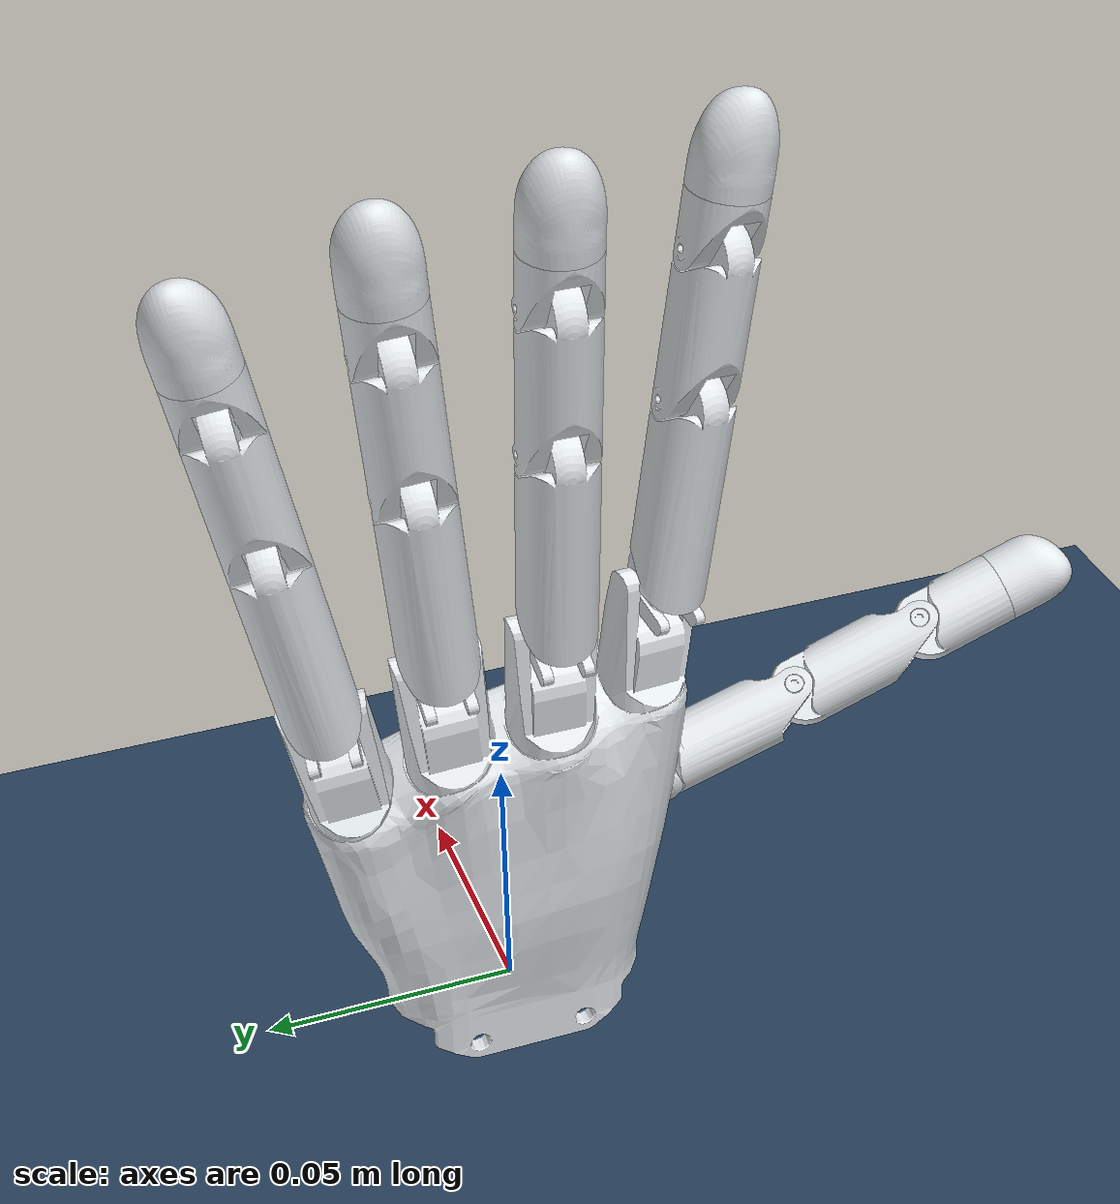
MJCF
<mujoco model="wujihand-left-v1.0.0">

  <!-- ======= COMPILER SETTINGS ======= -->
  <compiler angle="radian"
           meshdir="meshes/left/"
           boundmass="0.001"
           boundinertia="1e-6"
           balanceinertia="true"
           autolimits="true"/>

  <!-- ======= SIMULATION OPTIONS ======= -->
  <option jacobian="sparse"
          integrator="RK4"
          timestep="0.002"
          solver="Newton"
          iterations="50"
          tolerance="1e-10"
          impratio="10"/>

  <!-- ======= VISUAL SETTINGS ======= -->
  <visual>
    <global fovy="45" linewidth="1" glow="0.02" offwidth="640" offheight="480"/>
    <quality shadowsize="2048" offsamples="4"/>
    <map force="0.1" znear="0.01"/>
    <headlight ambient="0.4 0.4 0.4" diffuse="0.5 0.5 0.5" specular="0.1 0.1 0.1"/>
  </visual>

  <!-- ======= MATERIALS & TEXTURES ======= -->
  <asset>
    <!-- Sky background -->
    <texture type="skybox" builtin="gradient"
             rgb1="0.3 0.5 0.7" rgb2="0 0 0"
             width="512" height="3072"/>
    <!-- Ground plane texture -->
    <texture name="texplane" type="2d" builtin="checker"
             rgb1="0.2 0.3 0.4" rgb2="0.1 0.2 0.3"
             markrgb="0.8 0.8 0.8" width="300" height="300"/>
    <material name="groundplane" texture="texplane"
              texuniform="true" texrepeat="5 5" reflectance="0.2"/>
    <!-- Palm Components -->
    <mesh name="palm_mask"            content_type="model/stl" file="palm_mask.STL"/>
    <mesh name="palm_link"            content_type="model/stl" file="palm_link.STL"/>

    <!-- Finger 1 (Index) Components -->
    <mesh name="finger1_link1"        content_type="model/stl" file="finger1_link1.STL"/>
    <mesh name="finger1_link2"        content_type="model/stl" file="finger1_link2.STL"/>
    <mesh name="finger1_link3"        content_type="model/stl" file="finger1_link3.STL"/>
    <mesh name="finger1_link4"        content_type="model/stl" file="finger1_link4.STL"/>
    <mesh name="finger1_tip_link"     content_type="model/stl" file="finger1_tip_link.STL"/>

    <!-- Finger 2 Components -->
    <mesh name="finger2_link1"        content_type="model/stl" file="finger2_link1.STL"/>
    <mesh name="finger2_link2"        content_type="model/stl" file="finger2_link2.STL"/>
    <mesh name="finger2_link3"        content_type="model/stl" file="finger2_link3.STL"/>
    <mesh name="finger2_link4"        content_type="model/stl" file="finger2_link4.STL"/>
    <mesh name="finger2_tip_link"     content_type="model/stl" file="finger2_tip_link.STL"/>

    <!-- Finger 3 (Middle) Components -->
    <mesh name="finger3_link1"        content_type="model/stl" file="finger3_link1.STL"/>
    <mesh name="finger3_link2"        content_type="model/stl" file="finger3_link2.STL"/>
    <mesh name="finger3_link3"        content_type="model/stl" file="finger3_link3.STL"/>
    <mesh name="finger3_link4"        content_type="model/stl" file="finger3_link4.STL"/>
    <mesh name="finger3_tip_link"     content_type="model/stl" file="finger3_tip_link.STL"/>

    <!-- Finger 4 Components -->
    <mesh name="finger4_link1"        content_type="model/stl" file="finger4_link1.STL"/>
    <mesh name="finger4_link2"        content_type="model/stl" file="finger4_link2.STL"/>
    <mesh name="finger4_link3"        content_type="model/stl" file="finger4_link3.STL"/>
    <mesh name="finger4_link4"        content_type="model/stl" file="finger4_link4.STL"/>
    <mesh name="finger4_tip_link"     content_type="model/stl" file="finger4_tip_link.STL"/>

    <!-- Finger 5 (Pinky) Components -->
    <mesh name="finger5_link1"        content_type="model/stl" file="finger5_link1.STL"/>
    <mesh name="finger5_link2"        content_type="model/stl" file="finger5_link2.STL"/>
    <mesh name="finger5_link3"        content_type="model/stl" file="finger5_link3.STL"/>
    <mesh name="finger5_link4"        content_type="model/stl" file="finger5_link4.STL"/>
    <mesh name="finger5_tip_link"     content_type="model/stl" file="finger5_tip_link.STL"/>
  </asset>

  <!-- ======= WORLD BODY (KINEMATIC STRUCTURE) ======= -->
  <worldbody>
    <!-- Ground Plane (lowered to accommodate hand) -->
    <geom name="floor" pos="0 0 -0.01" size="0 0 0.05" type="plane"
          material="groundplane"/>

    <!-- Hand positioned at origin for easier control -->
    <body name="hand_base" pos="0 0 0">
      <!-- Palm Base (Fixed) -->
      <!-- Visual geometry (group 0 - default visible) -->
      <geom type="mesh" contype="0" conaffinity="0" group="0" density="0"
            rgba="0.898039 0.917647 0.929412 1" mesh="palm_mask"/>
      <!-- Collision geometry (group 3 - hidden by default) -->
      <geom quat="0.707105 0.707108 0 0" type="mesh" group="3"
            rgba="0.898039 0.917647 0.929412 0.3" mesh="palm_link"/>
    <!-- ======= FINGER 1 (INDEX FINGER) ======= -->
    <body name="finger1_link1" pos="0.0085244 -0.020575 0.028712" quat="0.682219 0.617669 0.0805047 0.382859">
      <!-- Inertial properties (mass=7.5g, optimized diaginertia) -->
      <inertial pos="-0.00158326 0.00213593 0.00777133"
                quat="0.734051 -0.233239 0.24905 0.587148"
                mass="0.0075"
                diaginertia="3.31e-04 3.17e-04 2.14e-04"/>
      <!-- Joint 1: Abduction/Adduction (damping=0.05, armature=0.0002 for stability) -->
      <joint name="finger1_joint1" pos="0 0 0" axis="0 1 0"
             range="-0.0448 1.6508" actuatorfrcrange="-0.6 0.6"
             damping="0.05" armature="0.0002"/>
      <!-- Collision and visual geometry -->
      <geom type="mesh" contype="0" conaffinity="0" group="0" density="0"
            rgba="0.898039 0.917647 0.929412 1" mesh="finger1_link1"/>
      <geom type="mesh" group="3" rgba="0.898039 0.917647 0.929412 0.3" mesh="finger1_link1"/>
      <!-- Link 2: Proximal Phalanx -->
      <body name="finger1_link2" pos="-0.0047549 0.0060191 0.014132"
            quat="0.949806 -0.145057 -0.26619 -0.0772614">
        <inertial pos="2.99523e-05 -0.00116812 0.0149182"
                  quat="0.991083 -0.00189877 0.00322883 0.133194"
                  mass="0.0248"
                  diaginertia="2.63e-04 2.56e-04 6.80e-05"/>
        <!-- Joint 2: Flexion/Extension (stronger damping for proximal) -->
        <joint name="finger1_joint2" pos="0 0 0" axis="-1 0 0"
               range="-0.1659 0.9339" actuatorfrcrange="-0.6 0.6"
               damping="0.05" armature="0.0002"/>
        <geom type="mesh" contype="0" conaffinity="0" group="0" density="0"
              rgba="0.898039 0.917647 0.929412 1" mesh="finger1_link2"/>
        <geom type="mesh" group="3" rgba="0.898039 0.917647 0.929412 0.3" mesh="finger1_link2"/>

        <!-- Link 3: Middle Phalanx -->
        <body name="finger1_link3" pos="0.0009915 -0.00026671 0.033166"
              quat="0.985406 -0.0256266 0.00440848 0.168221">
          <inertial pos="-0.00111645 -0.000193537 0.0127951"
                    quat="0.999935 0.000680599 0.0113674 -0.000619533"
                    mass="0.0165"
                    diaginertia="1.42e-04 1.39e-04 4.49e-05"/>
          <!-- Joint 3: Flexion/Extension (medium damping) -->
          <joint name="finger1_joint3" pos="0 0 0" axis="0 1 0"
                 range="-0.4932 1.6272" actuatorfrcrange="-0.3 0.3"
                 damping="0.03" armature="0.0001"/>
          <geom type="mesh" contype="0" conaffinity="0" group="0" density="0"
                rgba="0.898039 0.917647 0.929412 1" mesh="finger1_link3"/>
          <geom type="mesh" group="3" rgba="0.898039 0.917647 0.929412 0.3" mesh="finger1_link3"/>

          <!-- Link 4: Distal Phalanx -->
          <body name="finger1_link4" pos="0 4.0225e-05 0.028987">
            <inertial pos="-0.00277694 -0.000430645 0.0116637"
                      quat="0.69671 -0.125696 -0.127773 0.6946"
                      mass="0.0205"
                      diaginertia="1.85e-04 1.77e-04 6.02e-05"/>
            <!-- Joint 4: Flexion/Extension (gentler damping for distal) -->
            <joint name="finger1_joint4" pos="0 0 0" axis="0 1 0"
                   range="-0.4932 1.6272" actuatorfrcrange="-0.3 0.3"
                   damping="0.03" armature="0.0001"/>
            <geom type="mesh" contype="0" conaffinity="0" group="0" density="0"
                  rgba="0.898039 0.917647 0.929412 1" mesh="finger1_link4"/>
            <geom type="mesh" group="3" rgba="0.898039 0.917647 0.929412 0.3" mesh="finger1_link4"/>

            <!-- Fingertip -->
            <geom pos="-0.001058 -0.00044022 0.029313" type="mesh"
                  contype="0" conaffinity="0" group="0" density="0"
                  rgba="0.898039 0.917647 0.929412 1" mesh="finger1_tip_link"/>
            <geom pos="-0.001058 -0.00044022 0.029313" type="mesh" group="3"
                  rgba="0.898039 0.917647 0.929412 0.3" mesh="finger1_tip_link"/>
          </body>
        </body>
      </body>
    </body>

    <!-- ======= FINGER 2 ======= -->
    <body name="finger2_link1" pos="-0.0058701 -0.029434 0.091917"
          quat="0.991688 0.0588293 -0.0292722 0.110619">
      <inertial pos="-0.00132914 1.07998e-08 0.000319988"
                quat="0.934666 0 0.355526 0"
                mass="0.0032"
                diaginertia="1.05e-04 7.18e-04 5.42e-04"/>
      <!-- Joint 1: Abduction/Adduction -->
      <joint name="finger2_joint1" pos="0 0 0" axis="0 1 0"
             range="-0.32695 1.63595" actuatorfrcrange="-1 1"
             damping="0.05" armature="0.0002"/>
      <geom type="mesh" contype="0" conaffinity="0" group="0" density="0"
            rgba="0.898039 0.917647 0.929412 1" mesh="finger2_link1"/>
      <geom type="mesh" group="3" rgba="0.898039 0.917647 0.929412 0.3" mesh="finger2_link1"/>
      <body name="finger2_link2" pos="0.0022 0 0.004" quat="1 -0.00021661 5.4845e-06 1.188e-09">
        <inertial pos="-0.00607478 -4.93319e-07 0.0174058" quat="0.706241 0.0144906 0.0144207 0.707676" mass="0.033" diaginertia="4.77e-04 4.75e-04 8.69e-05"/>
        <joint name="finger2_joint2" pos="0 0 0" axis="-1 0 0" range="-0.495 0.495" actuatorfrcrange="-0.2 0.2" damping="0.05" armature="0.0002"/>
        <geom type="mesh" contype="0" conaffinity="0" group="0" density="0" rgba="0.898039 0.917647 0.929412 1" mesh="finger2_link2"/>
        <geom type="mesh" group="3" rgba="0.898039 0.917647 0.929412 0.3" mesh="finger2_link2"/>
        <body name="finger2_link3" pos="-0.0046 0 0.036618" quat="1 0 0 -0.000134305">
          <inertial pos="-0.00112281 4.42886e-06 0.0155096" quat="0.999849 0.000640688 -0.0173336 0.000389014" mass="0.0165" diaginertia="1.45e-04 1.42e-04 4.49e-05"/>
          <joint name="finger2_joint3" pos="0 0 0" axis="0 1 0" range="-0.4932 1.6272" actuatorfrcrange="-0.3 0.3" damping="0.03" armature="0.0001"/>
          <geom type="mesh" contype="0" conaffinity="0" group="0" density="0" rgba="0.898039 0.917647 0.929412 1" mesh="finger2_link3"/>
          <geom type="mesh" group="3" rgba="0.898039 0.917647 0.929412 0.3" mesh="finger2_link3"/>
          <body name="finger2_link4" pos="0 0 0.029">
            <inertial pos="-0.00179432 1.90619e-05 0.00809254" quat="0.989869 0.00024439 -0.141976 0.00116585" mass="0.018" diaginertia="1.17e-04 1.01e-04 5.11e-05"/>
            <joint name="finger2_joint4" pos="0 0 0" axis="0 1 0" range="-0.4932 1.6272" actuatorfrcrange="-0.3 0.3" damping="0.03" armature="0.0001"/>
            <geom type="mesh" contype="0" conaffinity="0" group="0" density="0" rgba="0.898039 0.917647 0.929412 1" mesh="finger2_link4"/>
            <geom type="mesh" group="3" rgba="0.898039 0.917647 0.929412 0.3" mesh="finger2_link4"/>
            <geom pos="-0.0010404 0 0.0267" type="mesh" contype="0" conaffinity="0" group="0" density="0" rgba="0.898039 0.917647 0.929412 1" mesh="finger2_tip_link"/>
            <geom pos="-0.0010404 0 0.0267" type="mesh" group="3" rgba="0.898039 0.917647 0.929412 0.3" mesh="finger2_tip_link"/>
          </body>
        </body>
      </body>
    </body>
    <!-- ======= FINGER 3 (MIDDLE FINGER) ======= -->
    <body name="finger3_link1" pos="-0.01046 -0.0074615 0.089544" quat="0.999048 1.26848e-05 -0.0436192 -0.000290547">
      <inertial pos="-0.00132914 1.11602e-09 0.000319937" quat="0.934669 0 0.35552 0" mass="0.0032" diaginertia="1.05e-04 7.18e-04 5.42e-04"/>
      <joint name="finger3_joint1" pos="0 0 0" axis="0 1 0" range="-0.32695 1.63595" actuatorfrcrange="-1 1" damping="0.05" armature="0.0002"/>
      <geom type="mesh" contype="0" conaffinity="0" group="0" density="0" rgba="0.898039 0.917647 0.929412 1" mesh="finger3_link1"/>
      <geom type="mesh" group="3" rgba="0.898039 0.917647 0.929412 0.3" mesh="finger3_link1"/>
      <body name="finger3_link2" pos="0.0022 0 0.004" quat="1 -0.000216615 0 0">
        <inertial pos="-0.00607477 -4.92548e-07 0.0174059" quat="0.706248 0.0144906 0.0144208 0.707669" mass="0.033" diaginertia="4.77e-04 4.75e-04 8.69e-05"/>
        <joint name="finger3_joint2" pos="0 0 0" axis="-1 0 0" range="-0.495 0.495" actuatorfrcrange="-0.2 0.2" damping="0.05" armature="0.0002"/>
        <geom type="mesh" contype="0" conaffinity="0" group="0" density="0" rgba="0.898039 0.917647 0.929412 1" mesh="finger3_link2"/>
        <geom type="mesh" group="3" rgba="0.898039 0.917647 0.929412 0.3" mesh="finger3_link2"/>
        <body name="finger3_link3" pos="-0.0046 0 0.036618" quat="1 0 0 -0.00013431">
          <inertial pos="-0.00112283 4.39677e-06 0.0155095" quat="0.99985 0.000640582 -0.0173313 0.000435052" mass="0.0165" diaginertia="1.45e-04 1.42e-04 4.49e-05"/>
          <joint name="finger3_joint3" pos="0 0 0" axis="0 1 0" range="-0.4932 1.6272" actuatorfrcrange="-0.3 0.3" damping="0.03" armature="0.0001"/>
          <geom type="mesh" contype="0" conaffinity="0" group="0" density="0" rgba="0.898039 0.917647 0.929412 1" mesh="finger3_link3"/>
          <geom type="mesh" group="3" rgba="0.898039 0.917647 0.929412 0.3" mesh="finger3_link3"/>
          <body name="finger3_link4" pos="0 0 0.029">
            <inertial pos="-0.00179391 1.91962e-05 0.00809271" quat="0.989878 0.000216489 -0.141913 0.0011626" mass="0.018" diaginertia="1.17e-04 1.01e-04 5.11e-05"/>
            <joint name="finger3_joint4" pos="0 0 0" axis="0 1 0" range="-0.4932 1.6272" actuatorfrcrange="-0.3 0.3" damping="0.03" armature="0.0001"/>
            <geom type="mesh" contype="0" conaffinity="0" group="0" density="0" rgba="0.898039 0.917647 0.929412 1" mesh="finger3_link4"/>
            <geom type="mesh" group="3" rgba="0.898039 0.917647 0.929412 0.3" mesh="finger3_link4"/>
            <geom pos="-0.0010404 0 0.0267" type="mesh" contype="0" conaffinity="0" group="0" density="0" rgba="0.898039 0.917647 0.929412 1" mesh="finger3_tip_link"/>
            <geom pos="-0.0010404 0 0.0267" type="mesh" group="3" rgba="0.898039 0.917647 0.929412 0.3" mesh="finger3_tip_link"/>
          </body>
        </body>
      </body>
    </body>
    <!-- ======= FINGER 4 ======= -->
    <body name="finger4_link1" pos="-0.0076649 0.013712 0.084429" quat="0.997776 -0.0461093 -0.0408899 -0.0253861">
      <inertial pos="-0.00132895 1.51763e-09 0.000320714" quat="0.934562 0 0.355801 0" mass="0.0032" diaginertia="1.05e-04 7.18e-04 5.42e-04"/>
      <joint name="finger4_joint1" pos="0 0 0" axis="0 1 0" range="-0.32695 1.63595" actuatorfrcrange="-1 1" damping="0.05" armature="0.0002"/>
      <geom type="mesh" contype="0" conaffinity="0" group="0" density="0" rgba="0.898039 0.917647 0.929412 1" mesh="finger4_link1"/>
      <geom type="mesh" group="3" rgba="0.898039 0.917647 0.929412 0.3" mesh="finger4_link1"/>
      <body name="finger4_link2" pos="0.0022024 0 0.0039987" quat="1 -0.000216615 0.00030243 6.55109e-08">
        <inertial pos="-0.00607477 -4.94697e-07 0.0174059" quat="0.706228 0.0144907 0.0144204 0.707689" mass="0.033" diaginertia="4.77e-04 4.75e-04 8.69e-05"/>
        <joint name="finger4_joint2" pos="0 0 0" axis="-1 0 0" range="-0.495 0.495" actuatorfrcrange="-0.2 0.2" damping="0.05" armature="0.0002"/>
        <geom type="mesh" contype="0" conaffinity="0" group="0" density="0" rgba="0.898039 0.917647 0.929412 1" mesh="finger4_link2"/>
        <geom type="mesh" group="3" rgba="0.898039 0.917647 0.929412 0.3" mesh="finger4_link2"/>
        <body name="finger4_link3" pos="-0.0046 0 0.036618" quat="1 0 0 -0.00013431">
          <inertial pos="-0.00112283 4.39701e-06 0.0155095" quat="0.99985 0.000640596 -0.017331 0.000437192" mass="0.0165" diaginertia="1.45e-04 1.42e-04 4.49e-05"/>
          <joint name="finger4_joint3" pos="0 0 0" axis="0 1 0" range="-0.4932 1.6272" actuatorfrcrange="-0.3 0.3" damping="0.03" armature="0.0001"/>
          <geom type="mesh" contype="0" conaffinity="0" group="0" density="0" rgba="0.898039 0.917647 0.929412 1" mesh="finger4_link3"/>
          <geom type="mesh" group="3" rgba="0.898039 0.917647 0.929412 0.3" mesh="finger4_link3"/>
          <body name="finger4_link4" pos="0 0 0.029">
            <inertial pos="-0.00180943 1.90458e-05 0.00808965" quat="0.989562 0.00023441 -0.144102 0.00118239" mass="0.018" diaginertia="1.17e-04 1.01e-04 5.11e-05"/>
            <joint name="finger4_joint4" pos="0 0 0" axis="0 1 0" range="-0.4932 1.6272" actuatorfrcrange="-0.3 0.3" damping="0.03" armature="0.0001"/>
            <geom type="mesh" contype="0" conaffinity="0" group="0" density="0" rgba="0.898039 0.917647 0.929412 1" mesh="finger4_link4"/>
            <geom type="mesh" group="3" rgba="0.898039 0.917647 0.929412 0.3" mesh="finger4_link4"/>
            <geom pos="-0.0010993 0 0.026698" type="mesh" contype="0" conaffinity="0" group="0" density="0" rgba="0.898039 0.917647 0.929412 1" mesh="finger4_tip_link"/>
            <geom pos="-0.0010993 0 0.026698" type="mesh" group="3" rgba="0.898039 0.917647 0.929412 0.3" mesh="finger4_tip_link"/>
          </body>
        </body>
      </body>
    </body>
    <!-- ======= FINGER 5 (PINKY) ======= -->
    <body name="finger5_link1" pos="-0.0022687 0.034001 0.074281" quat="0.990854 -0.0993501 -0.0387001 -0.0827">
      <inertial pos="-0.00132891 -3.48187e-08 0.000320877" quat="0.934535 0 0.355872 0" mass="0.0032" diaginertia="1.05e-04 7.18e-04 5.42e-04"/>
      <joint name="finger5_joint1" pos="0 0 0" axis="0 1 0" range="-0.32695 1.63595" actuatorfrcrange="-1 1" damping="0.05" armature="0.0002"/>
      <geom type="mesh" contype="0" conaffinity="0" group="0" density="0" rgba="0.898039 0.917647 0.929412 1" mesh="finger5_link1"/>
      <geom type="mesh" group="3" rgba="0.898039 0.917647 0.929412 0.3" mesh="finger5_link1"/>
      <body name="finger5_link2" pos="0.002203 0 0.0039983" quat="1 -0.000216615 0.000378275 8.194e-08">
        <inertial pos="-0.00607478 -4.98516e-07 0.0174059" quat="0.706194 0.0144909 0.0144197 0.707723" mass="0.033" diaginertia="4.77e-04 4.75e-04 8.69e-05"/>
        <joint name="finger5_joint2" pos="0 0 0" axis="-1 0 0" range="-0.495 0.495" actuatorfrcrange="-0.2 0.2" damping="0.05" armature="0.0002"/>
        <geom type="mesh" contype="0" conaffinity="0" group="0" density="0" rgba="0.898039 0.917647 0.929412 1" mesh="finger5_link2"/>
        <geom type="mesh" group="3" rgba="0.898039 0.917647 0.929412 0.3" mesh="finger5_link2"/>
        <body name="finger5_link3" pos="-0.0046 0 0.036618" quat="1 0 0 -0.00013431">
          <inertial pos="-0.00112283 4.41305e-06 0.0155095" quat="0.99985 0.000641069 -0.0173316 0.000419416" mass="0.0165" diaginertia="1.45e-04 1.42e-04 4.49e-05"/>
          <joint name="finger5_joint3" pos="0 0 0" axis="0 1 0" range="-0.4932 1.6272" actuatorfrcrange="-0.3 0.3" damping="0.03" armature="0.0001"/>
          <geom type="mesh" contype="0" conaffinity="0" group="0" density="0" rgba="0.898039 0.917647 0.929412 1" mesh="finger5_link3"/>
          <geom type="mesh" group="3" rgba="0.898039 0.917647 0.929412 0.3" mesh="finger5_link3"/>
          <body name="finger5_link4" pos="0 0 0.029">
            <inertial pos="-0.00181289 1.90209e-05 0.00808886" quat="0.989491 0.000237103 -0.14459 0.0011879" mass="0.018" diaginertia="1.17e-04 1.01e-04 5.11e-05"/>
            <joint name="finger5_joint4" pos="0 0 0" axis="0 1 0" range="-0.4932 1.6272" actuatorfrcrange="-0.3 0.3" damping="0.03" armature="0.0001"/>
            <geom type="mesh" contype="0" conaffinity="0" group="0" density="0" rgba="0.898039 0.917647 0.929412 1" mesh="finger5_link4"/>
            <geom type="mesh" group="3" rgba="0.898039 0.917647 0.929412 0.3" mesh="finger5_link4"/>
            <geom pos="-0.0011127 0 0.026697" type="mesh" contype="0" conaffinity="0" group="0" density="0" rgba="0.898039 0.917647 0.929412 1" mesh="finger5_tip_link"/>
            <geom pos="-0.0011127 0 0.026697" type="mesh" group="3" rgba="0.898039 0.917647 0.929412 0.3" mesh="finger5_tip_link"/>
          </body>
        </body>
      </body>
    </body>
    </body>  <!-- Close hand_base body -->
  </worldbody>
  <!-- End of kinematic structure: 5 fingers × 4 joints = 20 DOF total -->

  <!-- ======= ACTUATORS (POSITION CONTROL) ======= -->

  <actuator>
    <!-- Finger 1 (Index) Actuators -->
    <position name="finger1_joint1_actuator" joint="finger1_joint1"
              ctrlrange="-1.57 1.57" kp="2" forcerange="-3 3"/>
    <position name="finger1_joint2_actuator" joint="finger1_joint2"
              ctrlrange="-1.57 1.57" kp="2" forcerange="-3 3"/>
    <position name="finger1_joint3_actuator" joint="finger1_joint3"
              ctrlrange="-1.57 1.57" kp="1" forcerange="-1.5 1.5"/>
    <position name="finger1_joint4_actuator" joint="finger1_joint4"
              ctrlrange="-1.57 1.57" kp="0.8" forcerange="-1 1"/>

    <!-- Finger 2 Actuators -->
    <position name="finger2_joint1_actuator" joint="finger2_joint1"
              ctrlrange="-1.57 1.57" kp="2" forcerange="-3 3"/>
    <position name="finger2_joint2_actuator" joint="finger2_joint2"
              ctrlrange="-1.57 1.57" kp="2" forcerange="-3 3"/>
    <position name="finger2_joint3_actuator" joint="finger2_joint3"
              ctrlrange="-1.57 1.57" kp="1" forcerange="-1.5 1.5"/>
    <position name="finger2_joint4_actuator" joint="finger2_joint4"
              ctrlrange="-1.57 1.57" kp="0.8" forcerange="-1 1"/>

    <!-- Finger 3 (Middle) Actuators -->
    <position name="finger3_joint1_actuator" joint="finger3_joint1"
              ctrlrange="-1.57 1.57" kp="2" forcerange="-3 3"/>
    <position name="finger3_joint2_actuator" joint="finger3_joint2"
              ctrlrange="-1.57 1.57" kp="2" forcerange="-3 3"/>
    <position name="finger3_joint3_actuator" joint="finger3_joint3"
              ctrlrange="-1.57 1.57" kp="1" forcerange="-1.5 1.5"/>
    <position name="finger3_joint4_actuator" joint="finger3_joint4"
              ctrlrange="-1.57 1.57" kp="0.8" forcerange="-1 1"/>

    <!-- Finger 4 Actuators -->
    <position name="finger4_joint1_actuator" joint="finger4_joint1"
              ctrlrange="-1.57 1.57" kp="2" forcerange="-3 3"/>
    <position name="finger4_joint2_actuator" joint="finger4_joint2"
              ctrlrange="-1.57 1.57" kp="2" forcerange="-3 3"/>
    <position name="finger4_joint3_actuator" joint="finger4_joint3"
              ctrlrange="-1.57 1.57" kp="1" forcerange="-1.5 1.5"/>
    <position name="finger4_joint4_actuator" joint="finger4_joint4"
              ctrlrange="-1.57 1.57" kp="0.8" forcerange="-1 1"/>

    <!-- Finger 5 (Pinky) Actuators -->
    <position name="finger5_joint1_actuator" joint="finger5_joint1"
              ctrlrange="-1.57 1.57" kp="2" forcerange="-3 3"/>
    <position name="finger5_joint2_actuator" joint="finger5_joint2"
              ctrlrange="-1.57 1.57" kp="2" forcerange="-3 3"/>
    <position name="finger5_joint3_actuator" joint="finger5_joint3"
              ctrlrange="-1.57 1.57" kp="1" forcerange="-1.5 1.5"/>
    <position name="finger5_joint4_actuator" joint="finger5_joint4"
              ctrlrange="-1.57 1.57" kp="0.8" forcerange="-1 1"/>
  </actuator>
</mujoco>
